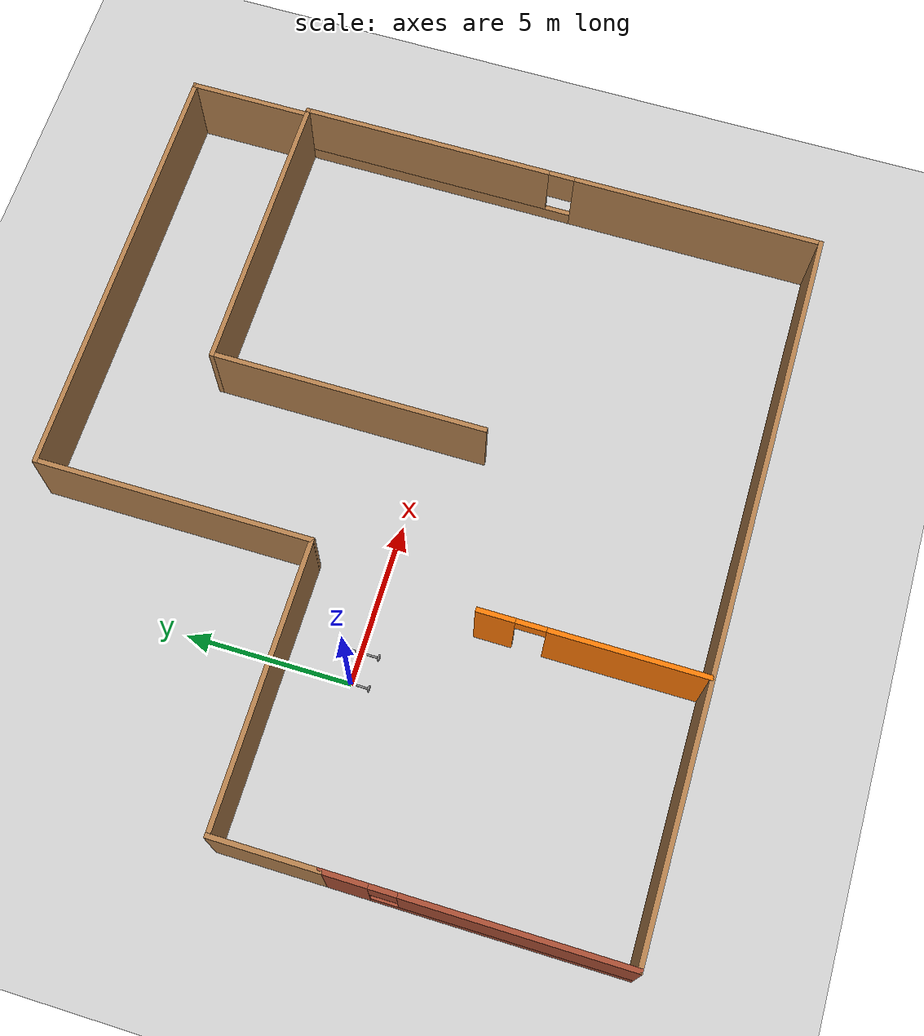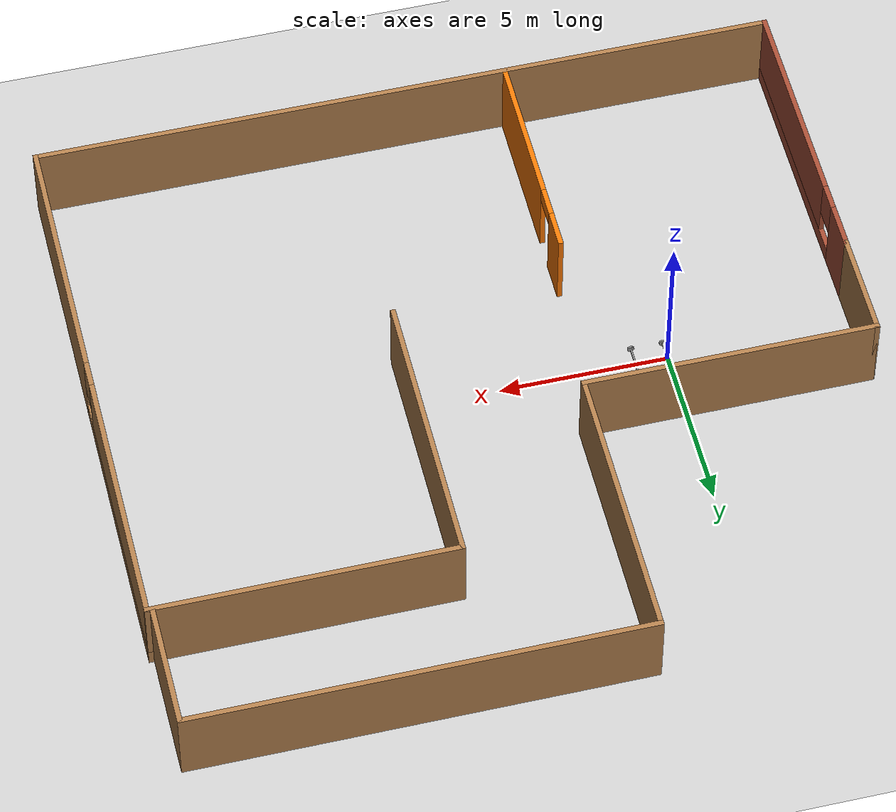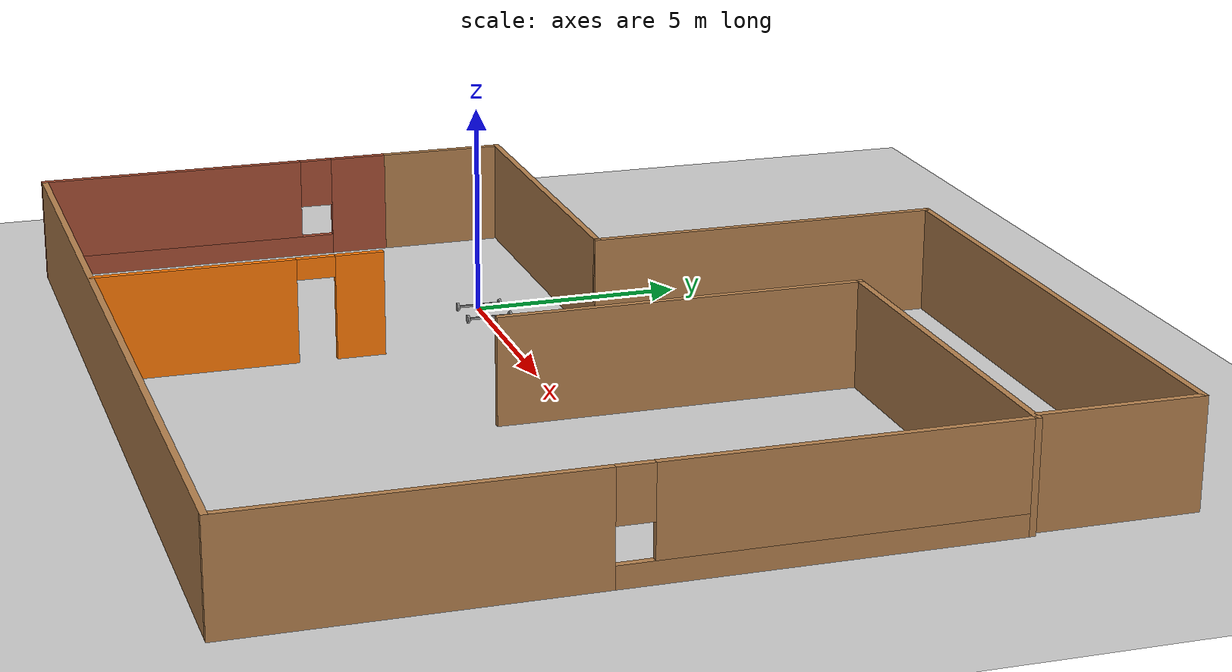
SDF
<sdf version="1.6">
 <world name="default">
  <model name="ground_plane">
   <static>1</static>
   <link name="link">
    <collision name="collision">
     <geometry><plane><normal>0 0 1</normal><size>100 100</size></plane></geometry>
     <surface>
      <contact><collide_bitmask>65535</collide_bitmask></contact>
      <friction><ode><mu>100</mu><mu2>50</mu2></ode></friction>
     </surface>
    </collision>
    <visual name="visual">
     <cast_shadows>0</cast_shadows>
     <geometry><plane><normal>0 0 1</normal><size>100 100</size></plane></geometry>
     <material>
      <script><uri>file://media/materials/scripts/gazebo.material</uri><name>Gazebo/Grey</name></script>
     </material>
    </visual>
   </link>
  </model>
  <model name="robot">
   <link name="link_0">
    <pose>-0.475 1e-06 2e-06 0 -0 0</pose>
    <inertial>
     <mass>1</mass>
     <inertia>
      <ixx>0.166667</ixx>
      <ixy>0</ixy>
      <ixz>0</ixz>
      <iyy>0.166667</iyy>
      <iyz>0</iyz>
      <izz>0.166667</izz>
     </inertia>
    </inertial>
    <visual name="visual">
     <geometry><box><size>0.05 1 0.05</size></box></geometry>
     <material>
      <lighting>1</lighting>
      <script><uri>file://media/materials/scripts/gazebo.material</uri><name>Gazebo/Grey</name></script>
      <shader type="pixel"><normal_map>__default__</normal_map></shader>
      <ambient>0.3 0.3 0.3 1</ambient>
      <diffuse>0.7 0.7 0.7 1</diffuse>
      <specular>0.01 0.01 0.01 1</specular>
      <emissive>0 0 0 1</emissive>
     </material>
    </visual>
    <collision name="collision">
     <geometry><box><size>0.05 1 0.05</size></box></geometry>
     <surface>
      <friction>
       <ode><mu>1</mu><mu2>1</mu2><fdir1>0 0 0</fdir1><slip1>0</slip1><slip2>0</slip2></ode>
       <torsional>
        <coefficient>1</coefficient>
        <patch_radius>0</patch_radius>
        <surface_radius>0</surface_radius>
        <use_patch_radius>1</use_patch_radius>
        <ode><slip>0</slip></ode>
       </torsional>
      </friction>
      <bounce><restitution_coefficient>0</restitution_coefficient><threshold>1e+06</threshold></bounce>
      <contact>
       <collide_without_contact>0</collide_without_contact>
       <collide_without_contact_bitmask>1</collide_without_contact_bitmask>
       <collide_bitmask>1</collide_bitmask>
       <ode>
        <soft_cfm>0</soft_cfm>
        <soft_erp>0.2</soft_erp>
        <kp>1e+13</kp>
        <kd>1</kd>
        <max_vel>0.01</max_vel>
        <min_depth>0</min_depth>
       </ode>
       <bullet>
        <split_impulse>1</split_impulse>
        <split_impulse_penetration_threshold>-0.01</split_impulse_penetration_threshold>
        <soft_cfm>0</soft_cfm>
        <soft_erp>0.2</soft_erp>
        <kp>1e+13</kp>
        <kd>1</kd>
       </bullet>
      </contact>
     </surface>
    </collision>
   </link>
   <link name="link_0_clone">
    <pose>0.475 1e-06 2e-06 0 -0 0</pose>
    <inertial>
     <mass>1</mass>
     <inertia>
      <ixx>0.166667</ixx>
      <ixy>0</ixy>
      <ixz>0</ixz>
      <iyy>0.166667</iyy>
      <iyz>0</iyz>
      <izz>0.166667</izz>
     </inertia>
    </inertial>
    <visual name="visual">
     <geometry><box><size>0.05 1 0.05</size></box></geometry>
     <material>
      <lighting>1</lighting>
      <script><uri>file://media/materials/scripts/gazebo.material</uri><name>Gazebo/Grey</name></script>
      <shader type="pixel"><normal_map>__default__</normal_map></shader>
      <ambient>0.3 0.3 0.3 1</ambient>
      <diffuse>0.7 0.7 0.7 1</diffuse>
      <specular>0.01 0.01 0.01 1</specular>
      <emissive>0 0 0 1</emissive>
     </material>
    </visual>
    <collision name="collision">
     <geometry><box><size>0.05 1 0.05</size></box></geometry>
     <surface>
      <friction>
       <ode><mu>1</mu><mu2>1</mu2><fdir1>0 0 0</fdir1><slip1>0</slip1><slip2>0</slip2></ode>
       <torsional>
        <coefficient>1</coefficient>
        <patch_radius>0</patch_radius>
        <surface_radius>0</surface_radius>
        <use_patch_radius>1</use_patch_radius>
        <ode><slip>0</slip></ode>
       </torsional>
      </friction>
      <bounce><restitution_coefficient>0</restitution_coefficient><threshold>1e+06</threshold></bounce>
      <contact>
       <collide_without_contact>0</collide_without_contact>
       <collide_without_contact_bitmask>1</collide_without_contact_bitmask>
       <collide_bitmask>1</collide_bitmask>
       <ode>
        <soft_cfm>0</soft_cfm>
        <soft_erp>0.2</soft_erp>
        <kp>1e+13</kp>
        <kd>1</kd>
        <max_vel>0.01</max_vel>
        <min_depth>0</min_depth>
       </ode>
       <bullet>
        <split_impulse>1</split_impulse>
        <split_impulse_penetration_threshold>-0.01</split_impulse_penetration_threshold>
        <soft_cfm>0</soft_cfm>
        <soft_erp>0.2</soft_erp>
        <kp>1e+13</kp>
        <kd>1</kd>
       </bullet>
      </contact>
     </surface>
    </collision>
   </link>
   <link name="link_1">
    <pose>0 1e-06 2e-06 0 -0 0</pose>
    <inertial>
     <mass>1</mass>
     <inertia>
      <ixx>0.166667</ixx>
      <ixy>0</ixy>
      <ixz>0</ixz>
      <iyy>0.166667</iyy>
      <iyz>0</iyz>
      <izz>0.166667</izz>
     </inertia>
    </inertial>
    <visual name="visual">
     <geometry><box><size>1 0.05 0.05</size></box></geometry>
     <material>
      <lighting>1</lighting>
      <script><uri>file://media/materials/scripts/gazebo.material</uri><name>Gazebo/Grey</name></script>
      <shader type="pixel"><normal_map>__default__</normal_map></shader>
      <ambient>0.3 0.3 0.3 1</ambient>
      <diffuse>0.7 0.7 0.7 1</diffuse>
      <specular>0.01 0.01 0.01 1</specular>
      <emissive>0 0 0 1</emissive>
     </material>
    </visual>
    <collision name="collision">
     <geometry><box><size>1 0.05 0.05</size></box></geometry>
     <surface>
      <friction>
       <ode><mu>1</mu><mu2>1</mu2><fdir1>0 0 0</fdir1><slip1>0</slip1><slip2>0</slip2></ode>
       <torsional>
        <coefficient>1</coefficient>
        <patch_radius>0</patch_radius>
        <surface_radius>0</surface_radius>
        <use_patch_radius>1</use_patch_radius>
        <ode><slip>0</slip></ode>
       </torsional>
      </friction>
      <bounce><restitution_coefficient>0</restitution_coefficient><threshold>1e+06</threshold></bounce>
      <contact>
       <collide_without_contact>0</collide_without_contact>
       <collide_without_contact_bitmask>1</collide_without_contact_bitmask>
       <collide_bitmask>1</collide_bitmask>
       <ode>
        <soft_cfm>0</soft_cfm>
        <soft_erp>0.2</soft_erp>
        <kp>1e+13</kp>
        <kd>1</kd>
        <max_vel>0.01</max_vel>
        <min_depth>0</min_depth>
       </ode>
       <bullet>
        <split_impulse>1</split_impulse>
        <split_impulse_penetration_threshold>-0.01</split_impulse_penetration_threshold>
        <soft_cfm>0</soft_cfm>
        <soft_erp>0.2</soft_erp>
        <kp>1e+13</kp>
        <kd>1</kd>
       </bullet>
      </contact>
     </surface>
    </collision>
   </link>
   <link name="link_4">
    <pose>-0.475 -0.525013 -1.2e-05 1.5707 -0 0</pose>
    <inertial>
     <mass>1</mass>
     <inertia><ixx>0.145833</ixx><ixy>0</ixy><ixz>0</ixz><iyy>0.145833</iyy><iyz>0</iyz><izz>0.125</izz></inertia>
    </inertial>
    <visual name="visual">
     <geometry><cylinder><radius>0.1</radius><length>0.05</length></cylinder></geometry>
     <material>
      <lighting>1</lighting>
      <script><uri>file://media/materials/scripts/gazebo.material</uri><name>Gazebo/Grey</name></script>
      <shader type="pixel"><normal_map>__default__</normal_map></shader>
      <ambient>0.3 0.3 0.3 1</ambient>
      <diffuse>0.7 0.7 0.7 1</diffuse>
      <specular>0.01 0.01 0.01 1</specular>
      <emissive>0 0 0 1</emissive>
     </material>
    </visual>
    <collision name="collision">
     <geometry><cylinder><radius>0.1</radius><length>0.05</length></cylinder></geometry>
     <surface>
      <friction>
       <ode><mu>1</mu><mu2>1</mu2><fdir1>0 0 0</fdir1><slip1>0</slip1><slip2>0</slip2></ode>
       <torsional>
        <coefficient>1</coefficient>
        <patch_radius>0</patch_radius>
        <surface_radius>0</surface_radius>
        <use_patch_radius>1</use_patch_radius>
        <ode><slip>0</slip></ode>
       </torsional>
      </friction>
      <bounce><restitution_coefficient>0</restitution_coefficient><threshold>1e+06</threshold></bounce>
      <contact>
       <collide_without_contact>0</collide_without_contact>
       <collide_without_contact_bitmask>1</collide_without_contact_bitmask>
       <collide_bitmask>1</collide_bitmask>
       <ode>
        <soft_cfm>0</soft_cfm>
        <soft_erp>0.2</soft_erp>
        <kp>1e+13</kp>
        <kd>1</kd>
        <max_vel>0.01</max_vel>
        <min_depth>0</min_depth>
       </ode>
       <bullet>
        <split_impulse>1</split_impulse>
        <split_impulse_penetration_threshold>-0.01</split_impulse_penetration_threshold>
        <soft_cfm>0</soft_cfm>
        <soft_erp>0.2</soft_erp>
        <kp>1e+13</kp>
        <kd>1</kd>
       </bullet>
      </contact>
     </surface>
    </collision>
   </link>
   <link name="link_4_clone">
    <pose>-0.475 0.52501 2e-06 1.5707 -0 0</pose>
    <inertial>
     <mass>1</mass>
     <inertia><ixx>0.145833</ixx><ixy>0</ixy><ixz>0</ixz><iyy>0.145833</iyy><iyz>0</iyz><izz>0.125</izz></inertia>
    </inertial>
    <visual name="visual">
     <geometry><cylinder><radius>0.1</radius><length>0.05</length></cylinder></geometry>
     <material>
      <lighting>1</lighting>
      <script><uri>file://media/materials/scripts/gazebo.material</uri><name>Gazebo/Grey</name></script>
      <shader type="pixel"><normal_map>__default__</normal_map></shader>
      <ambient>0.3 0.3 0.3 1</ambient>
      <diffuse>0.7 0.7 0.7 1</diffuse>
      <specular>0.01 0.01 0.01 1</specular>
      <emissive>0 0 0 1</emissive>
     </material>
    </visual>
    <collision name="collision">
     <geometry><cylinder><radius>0.1</radius><length>0.05</length></cylinder></geometry>
     <surface>
      <friction>
       <ode><mu>1</mu><mu2>1</mu2><fdir1>0 0 0</fdir1><slip1>0</slip1><slip2>0</slip2></ode>
       <torsional>
        <coefficient>1</coefficient>
        <patch_radius>0</patch_radius>
        <surface_radius>0</surface_radius>
        <use_patch_radius>1</use_patch_radius>
        <ode><slip>0</slip></ode>
       </torsional>
      </friction>
      <bounce><restitution_coefficient>0</restitution_coefficient><threshold>1e+06</threshold></bounce>
      <contact>
       <collide_without_contact>0</collide_without_contact>
       <collide_without_contact_bitmask>1</collide_without_contact_bitmask>
       <collide_bitmask>1</collide_bitmask>
       <ode>
        <soft_cfm>0</soft_cfm>
        <soft_erp>0.2</soft_erp>
        <kp>1e+13</kp>
        <kd>1</kd>
        <max_vel>0.01</max_vel>
        <min_depth>0</min_depth>
       </ode>
       <bullet>
        <split_impulse>1</split_impulse>
        <split_impulse_penetration_threshold>-0.01</split_impulse_penetration_threshold>
        <soft_cfm>0</soft_cfm>
        <soft_erp>0.2</soft_erp>
        <kp>1e+13</kp>
        <kd>1</kd>
       </bullet>
      </contact>
     </surface>
    </collision>
   </link>
   <link name="link_4_clone_0">
    <pose>0.475 -0.525009 2e-06 1.5707 -0 0</pose>
    <inertial>
     <mass>1</mass>
     <inertia><ixx>0.145833</ixx><ixy>0</ixy><ixz>0</ixz><iyy>0.145833</iyy><iyz>0</iyz><izz>0.125</izz></inertia>
    </inertial>
    <visual name="visual">
     <geometry><cylinder><radius>0.1</radius><length>0.05</length></cylinder></geometry>
     <material>
      <lighting>1</lighting>
      <script><uri>file://media/materials/scripts/gazebo.material</uri><name>Gazebo/Grey</name></script>
      <shader type="pixel"><normal_map>__default__</normal_map></shader>
      <ambient>0.3 0.3 0.3 1</ambient>
      <diffuse>0.7 0.7 0.7 1</diffuse>
      <specular>0.01 0.01 0.01 1</specular>
      <emissive>0 0 0 1</emissive>
     </material>
    </visual>
    <collision name="collision">
     <geometry><cylinder><radius>0.1</radius><length>0.05</length></cylinder></geometry>
     <surface>
      <friction>
       <ode><mu>1</mu><mu2>1</mu2><fdir1>0 0 0</fdir1><slip1>0</slip1><slip2>0</slip2></ode>
       <torsional>
        <coefficient>1</coefficient>
        <patch_radius>0</patch_radius>
        <surface_radius>0</surface_radius>
        <use_patch_radius>1</use_patch_radius>
        <ode><slip>0</slip></ode>
       </torsional>
      </friction>
      <bounce><restitution_coefficient>0</restitution_coefficient><threshold>1e+06</threshold></bounce>
      <contact>
       <collide_without_contact>0</collide_without_contact>
       <collide_without_contact_bitmask>1</collide_without_contact_bitmask>
       <collide_bitmask>1</collide_bitmask>
       <ode>
        <soft_cfm>0</soft_cfm>
        <soft_erp>0.2</soft_erp>
        <kp>1e+13</kp>
        <kd>1</kd>
        <max_vel>0.01</max_vel>
        <min_depth>0</min_depth>
       </ode>
       <bullet>
        <split_impulse>1</split_impulse>
        <split_impulse_penetration_threshold>-0.01</split_impulse_penetration_threshold>
        <soft_cfm>0</soft_cfm>
        <soft_erp>0.2</soft_erp>
        <kp>1e+13</kp>
        <kd>1</kd>
       </bullet>
      </contact>
     </surface>
    </collision>
   </link>
   <link name="link_4_clone_1">
    <pose>0.475 0.52501 2e-06 1.5707 -0 0</pose>
    <inertial>
     <mass>1</mass>
     <inertia><ixx>0.145833</ixx><ixy>0</ixy><ixz>0</ixz><iyy>0.145833</iyy><iyz>0</iyz><izz>0.125</izz></inertia>
    </inertial>
    <visual name="visual">
     <geometry><cylinder><radius>0.1</radius><length>0.05</length></cylinder></geometry>
     <material>
      <lighting>1</lighting>
      <script><uri>file://media/materials/scripts/gazebo.material</uri><name>Gazebo/Grey</name></script>
      <shader type="pixel"><normal_map>__default__</normal_map></shader>
      <ambient>0.3 0.3 0.3 1</ambient>
      <diffuse>0.7 0.7 0.7 1</diffuse>
      <specular>0.01 0.01 0.01 1</specular>
      <emissive>0 0 0 1</emissive>
     </material>
    </visual>
    <collision name="collision">
     <geometry><cylinder><radius>0.1</radius><length>0.05</length></cylinder></geometry>
     <surface>
      <friction>
       <ode><mu>1</mu><mu2>1</mu2><fdir1>0 0 0</fdir1><slip1>0</slip1><slip2>0</slip2></ode>
       <torsional>
        <coefficient>1</coefficient>
        <patch_radius>0</patch_radius>
        <surface_radius>0</surface_radius>
        <use_patch_radius>1</use_patch_radius>
        <ode><slip>0</slip></ode>
       </torsional>
      </friction>
      <bounce><restitution_coefficient>0</restitution_coefficient><threshold>1e+06</threshold></bounce>
      <contact>
       <collide_without_contact>0</collide_without_contact>
       <collide_without_contact_bitmask>1</collide_without_contact_bitmask>
       <collide_bitmask>1</collide_bitmask>
       <ode>
        <soft_cfm>0</soft_cfm>
        <soft_erp>0.2</soft_erp>
        <kp>1e+13</kp>
        <kd>1</kd>
        <max_vel>0.01</max_vel>
        <min_depth>0</min_depth>
       </ode>
       <bullet>
        <split_impulse>1</split_impulse>
        <split_impulse_penetration_threshold>-0.01</split_impulse_penetration_threshold>
        <soft_cfm>0</soft_cfm>
        <soft_erp>0.2</soft_erp>
        <kp>1e+13</kp>
        <kd>1</kd>
       </bullet>
      </contact>
     </surface>
    </collision>
   </link>
   <joint name="link_0_JOINT_3" type="revolute">
    <parent>link_0</parent>
    <child>link_4</child>
    <axis>
     <xyz>0 0 -1</xyz>
     <use_parent_model_frame>0</use_parent_model_frame>
     <limit>
      <lower>-1.79769e+308</lower>
      <upper>1.79769e+308</upper>
      <effort>-1</effort>
      <velocity>-1</velocity>
     </limit>
     <dynamics>
      <spring_reference>0</spring_reference>
      <spring_stiffness>0</spring_stiffness>
      <damping>0</damping>
     </dynamics>
    </axis>
    <physics>
     <ode><limit><cfm>0</cfm><erp>0.2</erp></limit><suspension><cfm>0</cfm><erp>0.2</erp></suspension></ode>
    </physics>
   </joint>
   <joint name="link_0_JOINT_4" type="revolute">
    <parent>link_0</parent>
    <child>link_4_clone</child>
    <axis>
     <xyz>0 0 1</xyz>
     <use_parent_model_frame>0</use_parent_model_frame>
     <limit>
      <lower>-1.79769e+308</lower>
      <upper>1.79769e+308</upper>
      <effort>-1</effort>
      <velocity>-1</velocity>
     </limit>
     <dynamics>
      <spring_reference>0</spring_reference>
      <spring_stiffness>0</spring_stiffness>
      <damping>0</damping>
     </dynamics>
    </axis>
    <physics>
     <ode><limit><cfm>0</cfm><erp>0.2</erp></limit><suspension><cfm>0</cfm><erp>0.2</erp></suspension></ode>
    </physics>
   </joint>
   <joint name="link_0_clone_JOINT_5" type="revolute">
    <parent>link_0_clone</parent>
    <child>link_4_clone_0</child>
    <axis>
     <xyz>0 0 -1</xyz>
     <use_parent_model_frame>0</use_parent_model_frame>
     <limit>
      <lower>-1.79769e+308</lower>
      <upper>1.79769e+308</upper>
      <effort>-1</effort>
      <velocity>-1</velocity>
     </limit>
     <dynamics>
      <spring_reference>0</spring_reference>
      <spring_stiffness>0</spring_stiffness>
      <damping>0</damping>
     </dynamics>
    </axis>
    <physics>
     <ode><limit><cfm>0</cfm><erp>0.2</erp></limit><suspension><cfm>0</cfm><erp>0.2</erp></suspension></ode>
    </physics>
   </joint>
   <joint name="link_0_clone_JOINT_6" type="revolute">
    <parent>link_0_clone</parent>
    <child>link_4_clone_1</child>
    <axis>
     <xyz>0 0 1</xyz>
     <use_parent_model_frame>0</use_parent_model_frame>
     <limit>
      <lower>-1.79769e+308</lower>
      <upper>1.79769e+308</upper>
      <effort>-1</effort>
      <velocity>-1</velocity>
     </limit>
     <dynamics>
      <spring_reference>0</spring_reference>
      <spring_stiffness>0</spring_stiffness>
      <damping>0</damping>
     </dynamics>
    </axis>
    <physics>
     <ode><limit><cfm>0</cfm><erp>0.2</erp></limit><suspension><cfm>0</cfm><erp>0.2</erp></suspension></ode>
    </physics>
   </joint>
   <joint name="link_1_JOINT_0" type="fixed">
    <parent>link_1</parent>
    <child>link_0</child>
    <physics>
     <ode><limit><cfm>0</cfm><erp>0.2</erp></limit><suspension><cfm>0</cfm><erp>0.2</erp></suspension></ode>
    </physics>
   </joint>
   <joint name="link_1_JOINT_1" type="fixed">
    <parent>link_1</parent>
    <child>link_0_clone</child>
    <physics>
     <ode><limit><cfm>0</cfm><erp>0.2</erp></limit><suspension><cfm>0</cfm><erp>0.2</erp></suspension></ode>
    </physics>
   </joint>
   <static>0</static>
   <pose>0.5 -1e-06 0.099998 0 -0 0</pose>
  </model>
  <model name="structure">
   <pose>5.54 0.365 0 0 -0 0</pose>
   <link name="Wall_0">
    <pose>-11.05 -5.725 0 0 0 -1.5708</pose>
    <visual name="Wall_0_Visual_0">
     <pose>-3.67405 0 1.25 0 -0 0</pose>
     <geometry><box><size>1.40189 0.15 2.5</size></box></geometry>
     <material>
      <script><uri>file://media/materials/scripts/gazebo.material</uri><name>Gazebo/Bricks</name></script>
      <ambient>1 1 1 1</ambient>
     </material>
     <meta><layer>0</layer></meta>
    </visual>
    <collision name="Wall_0_Collision_0">
     <geometry><box><size>1.40189 0.15 2.5</size></box></geometry>
     <pose>-3.67405 0 1.25 0 -0 0</pose>
    </collision>
    <visual name="Wall_0_Visual_1">
     <pose>0.700946 0 0.25 0 -0 0</pose>
     <geometry><box><size>7.34811 0.15 0.5</size></box></geometry>
     <material>
      <script><uri>file://media/materials/scripts/gazebo.material</uri><name>Gazebo/Bricks</name></script>
      <ambient>1 1 1 1</ambient>
     </material>
     <meta><layer>0</layer></meta>
    </visual>
    <collision name="Wall_0_Collision_1">
     <geometry><box><size>7.34811 0.15 0.5</size></box></geometry>
     <pose>0.700946 0 0.25 0 -0 0</pose>
    </collision>
    <visual name="Wall_0_Visual_2">
     <pose>1.10095 0 1.5 0 -0 0</pose>
     <geometry><box><size>6.54811 0.15 2</size></box></geometry>
     <material>
      <script><uri>file://media/materials/scripts/gazebo.material</uri><name>Gazebo/Bricks</name></script>
      <ambient>1 1 1 1</ambient>
     </material>
     <meta><layer>0</layer></meta>
    </visual>
    <collision name="Wall_0_Collision_2">
     <geometry><box><size>6.54811 0.15 2</size></box></geometry>
     <pose>1.10095 0 1.5 0 -0 0</pose>
    </collision>
    <visual name="Wall_0_Visual_3">
     <pose>-2.57311 0 1.9 0 -0 0</pose>
     <geometry><box><size>0.8 0.15 1.2</size></box></geometry>
     <material>
      <script><uri>file://media/materials/scripts/gazebo.material</uri><name>Gazebo/Bricks</name></script>
      <ambient>1 1 1 1</ambient>
     </material>
     <meta><layer>0</layer></meta>
    </visual>
    <collision name="Wall_0_Collision_3">
     <geometry><box><size>0.8 0.15 1.2</size></box></geometry>
     <pose>-2.57311 0 1.9 0 -0 0</pose>
    </collision>
   </link>
   <link name="Wall_1">
    <collision name="Wall_1_Collision">
     <geometry><box><size>22.25 0.15 2.5</size></box></geometry>
     <pose>0 0 1.25 0 -0 0</pose>
    </collision>
    <visual name="Wall_1_Visual">
     <pose>0 0 1.25 0 -0 0</pose>
     <geometry><box><size>22.25 0.15 2.5</size></box></geometry>
     <material>
      <script><uri>file://media/materials/scripts/gazebo.material</uri><name>Gazebo/Wood</name></script>
      <ambient>1 1 1 1</ambient>
     </material>
     <meta><layer>0</layer></meta>
    </visual>
    <pose>0 -10.025 0 0 -0 0</pose>
   </link>
   <link name="Wall_10">
    <collision name="Wall_10_Collision">
     <geometry><box><size>3.75 0.15 2.5</size></box></geometry>
     <pose>0 0 1.25 0 -0 0</pose>
    </collision>
    <visual name="Wall_10_Visual">
     <pose>0 0 1.25 0 -0 0</pose>
     <geometry><box><size>3.75 0.15 2.5</size></box></geometry>
     <material>
      <script><uri>file://media/materials/scripts/gazebo.material</uri><name>Gazebo/Wood</name></script>
      <ambient>1 1 1 1</ambient>
     </material>
     <meta><layer>0</layer></meta>
    </visual>
    <pose>10.9 8.225 0 0 0 -1.5708</pose>
   </link>
   <link name="Wall_13">
    <pose>-3.05767 -6.67983 0 0 -0 1.5708</pose>
    <visual name="Wall_13_Visual_0">
     <pose>-1.02253 0 1.25 0 -0 0</pose>
     <geometry><box><size>4.70493 0.15 2.5</size></box></geometry>
     <material>
      <script><uri>file://media/materials/scripts/gazebo.material</uri><name>Gazebo/Grey</name></script>
      <ambient>0.996078 0.47451 0.0196078 1</ambient>
     </material>
     <meta><layer>0</layer></meta>
    </visual>
    <collision name="Wall_13_Collision_0">
     <geometry><box><size>4.70493 0.15 2.5</size></box></geometry>
     <pose>-1.02253 0 1.25 0 -0 0</pose>
    </collision>
    <visual name="Wall_13_Visual_1">
     <pose>2.80247 0 1.25 0 -0 0</pose>
     <geometry><box><size>1.14507 0.15 2.5</size></box></geometry>
     <material>
      <script><uri>file://media/materials/scripts/gazebo.material</uri><name>Gazebo/Grey</name></script>
      <ambient>0.996078 0.47451 0.0196078 1</ambient>
     </material>
     <meta><layer>0</layer></meta>
    </visual>
    <collision name="Wall_13_Collision_1">
     <geometry><box><size>1.14507 0.15 2.5</size></box></geometry>
     <pose>2.80247 0 1.25 0 -0 0</pose>
    </collision>
    <visual name="Wall_13_Visual_2">
     <pose>1.77993 0 2.25 0 -0 0</pose>
     <geometry><box><size>0.9 0.15 0.5</size></box></geometry>
     <material>
      <script><uri>file://media/materials/scripts/gazebo.material</uri><name>Gazebo/Grey</name></script>
      <ambient>0.996078 0.47451 0.0196078 1</ambient>
     </material>
     <meta><layer>0</layer></meta>
    </visual>
    <collision name="Wall_13_Collision_2">
     <geometry><box><size>0.9 0.15 0.5</size></box></geometry>
     <pose>1.77993 0 2.25 0 -0 0</pose>
    </collision>
   </link>
   <link name="Wall_2">
    <pose>11.05 -1.85 0 0 -0 1.5708</pose>
    <visual name="Wall_2_Visual_0">
     <pose>-4.35495 0 1.25 0 -0 0</pose>
     <geometry><box><size>7.79011 0.15 2.5</size></box></geometry>
     <material>
      <script><uri>file://media/materials/scripts/gazebo.material</uri><name>Gazebo/Wood</name></script>
      <ambient>1 1 1 1</ambient>
     </material>
     <meta><layer>0</layer></meta>
    </visual>
    <collision name="Wall_2_Collision_0">
     <geometry><box><size>7.79011 0.15 2.5</size></box></geometry>
     <pose>-4.35495 0 1.25 0 -0 0</pose>
    </collision>
    <visual name="Wall_2_Visual_1">
     <pose>3.89505 0 0.25 0 -0 0</pose>
     <geometry><box><size>8.70989 0.15 0.5</size></box></geometry>
     <material>
      <script><uri>file://media/materials/scripts/gazebo.material</uri><name>Gazebo/Wood</name></script>
      <ambient>1 1 1 1</ambient>
     </material>
     <meta><layer>0</layer></meta>
    </visual>
    <collision name="Wall_2_Collision_1">
     <geometry><box><size>8.70989 0.15 0.5</size></box></geometry>
     <pose>3.89505 0 0.25 0 -0 0</pose>
    </collision>
    <visual name="Wall_2_Visual_2">
     <pose>4.29505 0 1.5 0 -0 0</pose>
     <geometry><box><size>7.90989 0.15 2</size></box></geometry>
     <material>
      <script><uri>file://media/materials/scripts/gazebo.material</uri><name>Gazebo/Wood</name></script>
      <ambient>1 1 1 1</ambient>
     </material>
     <meta><layer>0</layer></meta>
    </visual>
    <collision name="Wall_2_Collision_2">
     <geometry><box><size>7.90989 0.15 2</size></box></geometry>
     <pose>4.29505 0 1.5 0 -0 0</pose>
    </collision>
    <visual name="Wall_2_Visual_3">
     <pose>-0.059891 0 1.9 0 -0 0</pose>
     <geometry><box><size>0.8 0.15 1.2</size></box></geometry>
     <material>
      <script><uri>file://media/materials/scripts/gazebo.material</uri><name>Gazebo/Wood</name></script>
      <ambient>1 1 1 1</ambient>
     </material>
     <meta><layer>0</layer></meta>
    </visual>
    <collision name="Wall_2_Collision_3">
     <geometry><box><size>0.8 0.15 1.2</size></box></geometry>
     <pose>-0.059891 0 1.9 0 -0 0</pose>
    </collision>
   </link>
   <link name="Wall_3">
    <collision name="Wall_3_Collision">
     <geometry><box><size>9 0.15 2.5</size></box></geometry>
     <pose>0 0 1.25 0 -0 0</pose>
    </collision>
    <visual name="Wall_3_Visual">
     <pose>0 0 1.25 0 -0 0</pose>
     <geometry><box><size>9 0.15 2.5</size></box></geometry>
     <material>
      <script><uri>file://media/materials/scripts/gazebo.material</uri><name>Gazebo/Wood</name></script>
      <ambient>1 1 1 1</ambient>
     </material>
     <meta><layer>0</layer></meta>
    </visual>
    <pose>6.625 6.325 0 0 -0 3.14159</pose>
   </link>
   <link name="Wall_4">
    <collision name="Wall_4_Collision">
     <geometry><box><size>8.5 0.15 2.5</size></box></geometry>
     <pose>0 0 1.25 0 -0 0</pose>
    </collision>
    <visual name="Wall_4_Visual">
     <pose>0 0 1.25 0 -0 0</pose>
     <geometry><box><size>8.5 0.15 2.5</size></box></geometry>
     <material>
      <script><uri>file://media/materials/scripts/gazebo.material</uri><name>Gazebo/Wood</name></script>
      <ambient>1 1 1 1</ambient>
     </material>
     <meta><layer>0</layer></meta>
    </visual>
    <pose>2.2 2.15 0 0 0 -1.5708</pose>
   </link>
   <link name="Wall_6">
    <collision name="Wall_6_Collision">
     <geometry><box><size>3.25 0.15 2.5</size></box></geometry>
     <pose>0 0 1.25 0 -0 0</pose>
    </collision>
    <visual name="Wall_6_Visual">
     <pose>0 0 1.25 0 -0 0</pose>
     <geometry><box><size>3.25 0.15 2.5</size></box></geometry>
     <material>
      <script><uri>file://media/materials/scripts/gazebo.material</uri><name>Gazebo/Wood</name></script>
      <ambient>1 1 1 1</ambient>
     </material>
     <meta><layer>0</layer></meta>
    </visual>
    <pose>-11.05 0.125 0 0 -0 1.5708</pose>
   </link>
   <link name="Wall_7">
    <collision name="Wall_7_Collision">
     <geometry><box><size>8.75 0.15 2.5</size></box></geometry>
     <pose>0 0 1.25 0 -0 0</pose>
    </collision>
    <visual name="Wall_7_Visual">
     <pose>0 0 1.25 0 -0 0</pose>
     <geometry><box><size>8.75 0.15 2.5</size></box></geometry>
     <material>
      <script><uri>file://media/materials/scripts/gazebo.material</uri><name>Gazebo/Wood</name></script>
      <ambient>1 1 1 1</ambient>
     </material>
     <meta><layer>0</layer></meta>
    </visual>
    <pose>-6.75 1.675 0 0 -0 0</pose>
   </link>
   <link name="Wall_8">
    <collision name="Wall_8_Collision">
     <geometry><box><size>8.5 0.15 2.5</size></box></geometry>
     <pose>0 0 1.25 0 -0 0</pose>
    </collision>
    <visual name="Wall_8_Visual">
     <pose>0 0 1.25 0 -0 0</pose>
     <geometry><box><size>8.5 0.15 2.5</size></box></geometry>
     <material>
      <script><uri>file://media/materials/scripts/gazebo.material</uri><name>Gazebo/Wood</name></script>
      <ambient>1 1 1 1</ambient>
     </material>
     <meta><layer>0</layer></meta>
    </visual>
    <pose>-2.45 5.85 0 0 -0 1.5708</pose>
   </link>
   <link name="Wall_9">
    <collision name="Wall_9_Collision">
     <geometry><box><size>13.5 0.15 2.5</size></box></geometry>
     <pose>0 0 1.25 0 -0 0</pose>
    </collision>
    <visual name="Wall_9_Visual">
     <pose>0 0 1.25 0 -0 0</pose>
     <geometry><box><size>13.5 0.15 2.5</size></box></geometry>
     <material>
      <script><uri>file://media/materials/scripts/gazebo.material</uri><name>Gazebo/Wood</name></script>
      <ambient>1 1 1 1</ambient>
     </material>
     <meta><layer>0</layer></meta>
    </visual>
    <pose>4.225 10.025 0 0 -0 0</pose>
   </link>
   <static>1</static>
  </model>
 </world>
</sdf>
